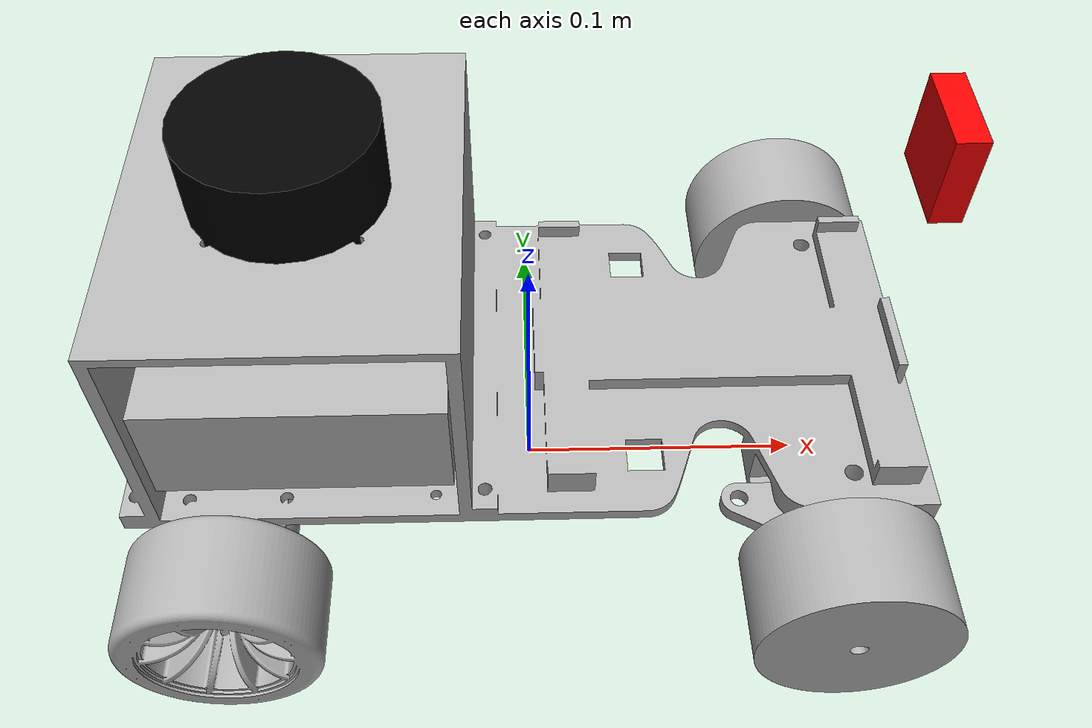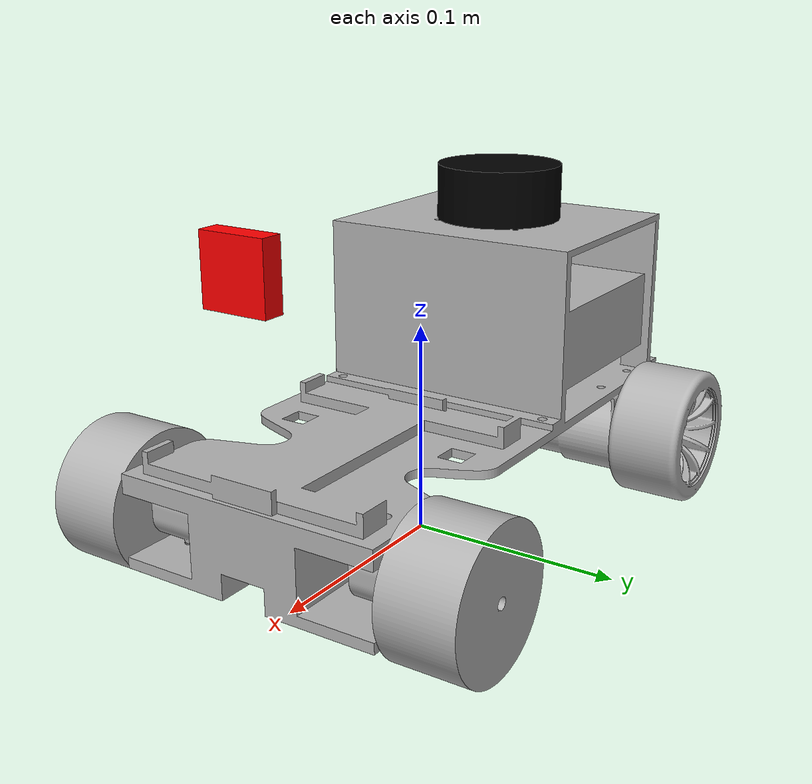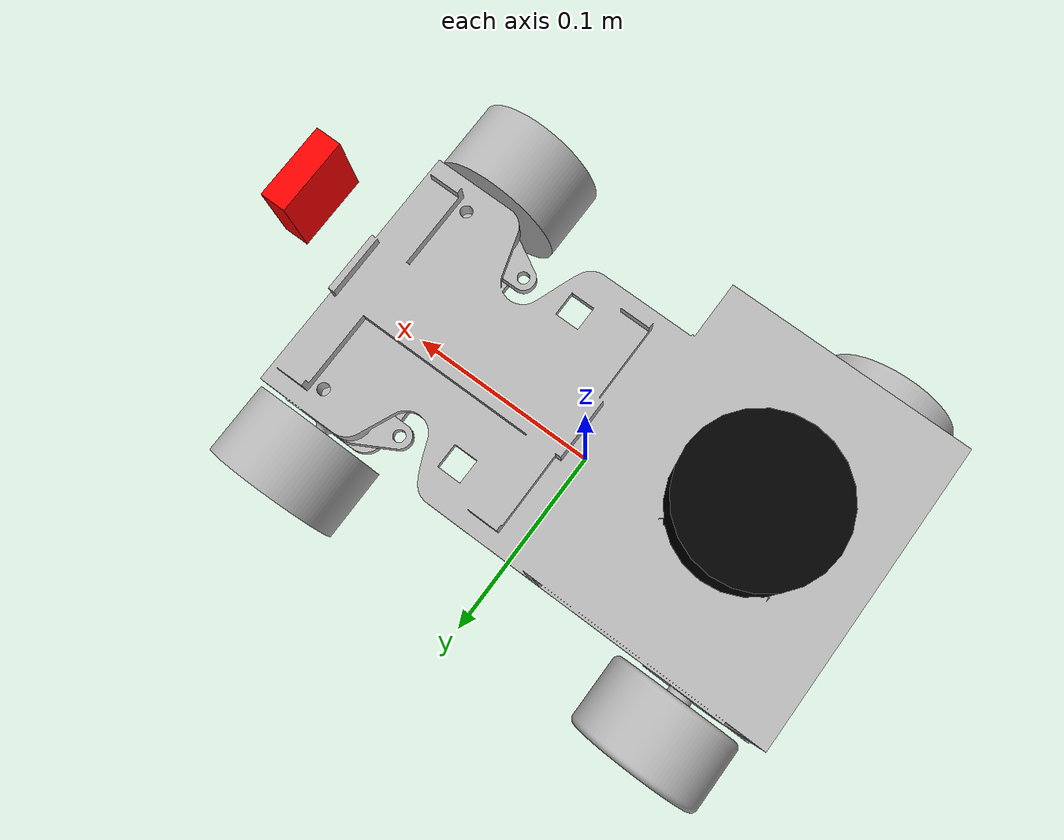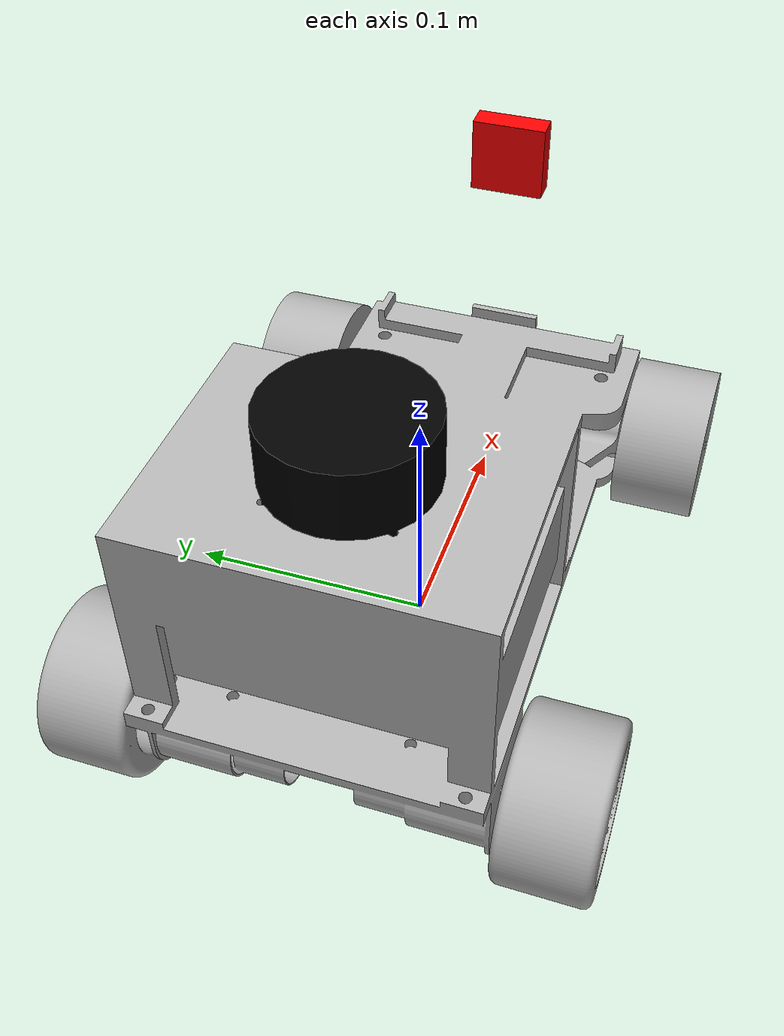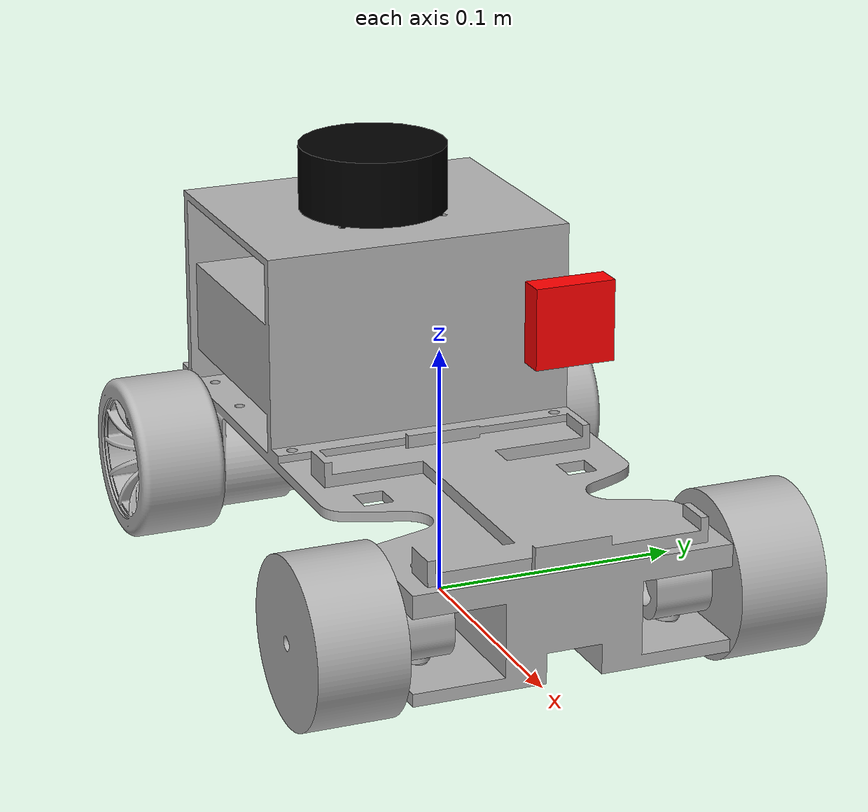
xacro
<?xml version="1.0" ?>
<robot name="robot_2" xmlns:xacro="http://www.ros.org/wiki/xacro">

<xacro:include filename="$(find robot_2_description)/urdf/materials.xacro" />
<xacro:include filename="$(find robot_2_description)/urdf/robot_2.trans" />
<xacro:include filename="$(find robot_2_description)/urdf/robot_2.gazebo" />
<xacro:include filename="$(find robot_2_description)/urdf/ros2_control.xacro" />
<xacro:include filename="$(find robot_2_description)/urdf/lidar.xacro" />
<xacro:include filename="$(find robot_2_description)/urdf/camera.xacro" />

<link name="base_link">
  <inertial>
    <origin xyz="-0.030778695710215853 -0.00017187958403205029 0.0780034263273014" rpy="0 0 0"/>
    <mass value="6.148868144226647"/>
    <inertia ixx="0.012471" iyy="0.038142" izz="0.040818" ixy="-6.8e-05" iyz="-2e-05" ixz="0.007561"/>
  </inertial>
  <visual>
    <origin xyz="0 0 0" rpy="0 0 3.141592653589793"/>
    <geometry>
      <mesh filename="file://$(find robot_2_description)/meshes/base_link.stl" scale="0.001 0.001 0.001"/>
    </geometry>
    <material name="silver"/>
  </visual>
  <collision>
    <origin xyz="0 0 0" rpy="0 0 3.141592653589793"/>
    <geometry>
      <mesh filename="file://$(find robot_2_description)/meshes/base_link.stl" scale="0.001 0.001 0.001"/>
    </geometry>
  </collision>
</link>

<link name="right_steering_1">
  <inertial>
    <origin xyz="0.006158363315530671 0.0020544276496725286 -3.3069679672426133e-06" rpy="0 0 0"/>
    <mass value="0.09920122832738423"/>
    <inertia ixx="9e-06" iyy="1.4e-05" izz="1.5e-05" ixy="1e-06" iyz="0.0" ixz="-0.0"/>
  </inertial>
  <visual>
    <origin xyz="-0.10312 0.0505 -0.0351" rpy="0 0 3.141592653589793"/>
    <geometry>
      <mesh filename="file://$(find robot_2_description)/meshes/right_steering_1.stl" scale="0.001 0.001 0.001"/>
    </geometry>
    <material name="silver"/>
  </visual>
  <collision>
    <origin xyz="-0.10312 0.0505 -0.0351" rpy="0 0 3.141592653589793"/>
    <geometry>
      <mesh filename="file://$(find robot_2_description)/meshes/right_steering_1.stl" scale="0.001 0.001 0.001"/>
    </geometry>
  </collision>
</link>

<link name="left_steering_1">
  <inertial>
    <origin xyz="0.006158363315530768 -0.0020544276496724106 3.3452641401351957e-06" rpy="0 0 0"/>
    <mass value="0.09920122832738423"/>
    <inertia ixx="9e-06" iyy="1.4e-05" izz="1.5e-05" ixy="-1e-06" iyz="0.0" ixz="0.0"/>
  </inertial>
  <visual>
    <origin xyz="-0.10312 -0.0505 -0.0351" rpy="0 0 3.141592653589793"/>
    <geometry>
      <mesh filename="file://$(find robot_2_description)/meshes/left_steering_1.stl" scale="0.001 0.001 0.001"/>
    </geometry>
    <material name="silver"/>
  </visual>
  <collision>
    <origin xyz="-0.10312 -0.0505 -0.0351" rpy="0 0 3.141592653589793"/>
    <geometry>
      <mesh filename="file://$(find robot_2_description)/meshes/left_steering_1.stl" scale="0.001 0.001 0.001"/>
    </geometry>
  </collision>
</link>

<link name="left_rear_wheel_1">
  <inertial>
    <origin xyz="-9.911240016202694e-08 -0.00032956138667881996 2.034739292333665e-08" rpy="0 0 0"/>
    <mass value="0.4967432663929975"/>
    <inertia ixx="0.000229" iyy="0.000365" izz="0.000229" ixy="0.0" iyz="-0.0" ixz="0.0"/>
  </inertial>
  <visual>
    <origin xyz="0.097623 -0.083 -0.0351" rpy="0 0 3.141592653589793"/>
    <geometry>
      <mesh filename="file://$(find robot_2_description)/meshes/left_rear_wheel_1.stl" scale="0.001 0.001 0.001"/>
    </geometry>
    <material name="silver"/>
  </visual>
  <collision>
    <origin xyz="0.097623 -0.083 -0.0351" rpy="0 0 3.141592653589793"/>
    <geometry>
      <mesh filename="file://$(find robot_2_description)/meshes/left_rear_wheel_1.stl" scale="0.001 0.001 0.001"/>
    </geometry>
  </collision>
</link>

<link name="right_rear_wheel_1">
  <inertial>
    <origin xyz="1.9532710547609522e-07 0.0003295613866789171 2.0491547063350435e-08" rpy="0 0 0"/>
    <mass value="0.49674326639299754"/>
    <inertia ixx="0.000229" iyy="0.000365" izz="0.000229" ixy="-0.0" iyz="0.0" ixz="-0.0"/>
  </inertial>
  <visual>
    <origin xyz="0.098035 0.083 -0.0351" rpy="0 0 3.141592653589793"/>
    <geometry>
      <mesh filename="file://$(find robot_2_description)/meshes/right_rear_wheel_1.stl" scale="0.001 0.001 0.001"/>
    </geometry>
    <material name="silver"/>
  </visual>
  <collision>
    <origin xyz="0.098035 0.083 -0.0351" rpy="0 0 3.141592653589793"/>
    <geometry>
      <mesh filename="file://$(find robot_2_description)/meshes/right_rear_wheel_1.stl" scale="0.001 0.001 0.001"/>
    </geometry>
  </collision>
</link>

<link name="right_front_wheel_1">
  <inertial>
    <origin xyz="0 0 0" rpy="0 0 0"/>
    <mass value="0.9046643177648892"/>
    <inertia ixx="0.000333" iyy="0.000481" izz="0.000333" ixy="0.0" iyz="0.0" ixz="0.0"/>
  </inertial>
  <visual>
    <origin xyz="-0.10005 0.082822 -0.0351" rpy="0 0 3.141592653589793"/>
    <geometry>
      <mesh filename="file://$(find robot_2_description)/meshes/right_front_wheel_1.stl" scale="0.001 0.001 0.001"/>
    </geometry>
    <material name="silver"/>
  </visual>
  <collision>
    <origin xyz="-0.10005 0.082822 -0.0351" rpy="0 0 3.141592653589793"/>
    <geometry>
      <mesh filename="file://$(find robot_2_description)/meshes/right_front_wheel_1.stl" scale="0.001 0.001 0.001"/>
    </geometry>
  </collision>
</link>

<link name="left_front_wheel_1">
  <inertial>
    <origin xyz="0 0 0" rpy="0 0 0"/>
    <mass value="0.9046643177648891"/>
    <inertia ixx="0.000333" iyy="0.000481" izz="0.000333" ixy="0.0" iyz="0.0" ixz="0.0"/>
  </inertial>
  <visual>
    <origin xyz="-0.10005 -0.082822 -0.0351" rpy="0 0 3.141592653589793"/>
    <geometry>
      <mesh filename="file://$(find robot_2_description)/meshes/left_front_wheel_1.stl" scale="0.001 0.001 0.001"/>
    </geometry>
    <material name="silver"/>
  </visual>
  <collision>
    <origin xyz="-0.10005 -0.082822 -0.0351" rpy="0 0 3.141592653589793"/>
    <geometry>
      <mesh filename="file://$(find robot_2_description)/meshes/left_front_wheel_1.stl" scale="0.001 0.001 0.001"/>
    </geometry>
  </collision>
</link>

<joint name="right_steering_to_base_link" type="revolute">
  <origin xyz="0.10312 -0.0505 0.0351" rpy="0 0 0"/>
  <parent link="base_link"/>
  <child link="right_steering_1"/>
  <axis xyz="0.0 0.0 1.0"/>
  <limit lower="-1.25" upper="1.25" effort="200.0" velocity="10.0"/>
</joint>

<joint name="left_steering_to_base_link" type="revolute">
  <origin xyz="0.10312 0.0505 0.0351" rpy="0 0 0"/>
  <parent link="base_link"/>
  <child link="left_steering_1"/>
  <axis xyz="0.0 0.0 1.0"/>
  <limit lower="-1.25" upper="1.25" effort="200.0" velocity="10.0"/>
</joint>

<joint name="left_rear_wheel_to_base_link" type="continuous">
  <origin xyz="-0.097623 0.083 0.0351" rpy="0 0 0"/>
  <parent link="base_link"/>
  <child link="left_rear_wheel_1"/>
  <axis xyz="0.0 1.0 0.0"/> </joint>

<joint name="right_rear_wheel_to_base_link" type="continuous">
  <origin xyz="-0.098035 -0.083 0.0351" rpy="0 0 0"/>
  <parent link="base_link"/>
  <child link="right_rear_wheel_1"/>
  <axis xyz="0.0 1.0 0.0"/>
</joint>

<joint name="right_front_wheel_to_right_steering" type="continuous">
  <origin xyz="-0.00307 -0.032322 0.0" rpy="0 0 0"/>
  <parent link="right_steering_1"/>
  <child link="right_front_wheel_1"/>
  <axis xyz="0.0 1.0 0.0"/>
</joint>

<joint name="left_front_wheel_to_left_steering" type="continuous">
  <origin xyz="-0.00307 0.032322 0.0" rpy="0 0 0"/>
  <parent link="left_steering_1"/>
  <child link="left_front_wheel_1"/>
  <axis xyz="0.0 1.0 0.0"/>
</joint>

</robot>

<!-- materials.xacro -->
<robot name="robot_2" xmlns:xacro="http://www.ros.org/wiki/xacro" >

<material name="silver">
  <color rgba="0.700 0.700 0.700 1.000"/>
</material>

</robot>

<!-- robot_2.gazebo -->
<robot name="robot_2" xmlns:xacro="http://www.ros.org/wiki/xacro" >

<xacro:property name="body_color" value="Gazebo/Silver" />

<gazebo reference="base_link">
  <material>${body_color}</material>
  <mu1>0.1</mu1>
  <mu2>0.1</mu2>
  <self_collide>false</self_collide>
  <gravity>true</gravity>
</gazebo>

<gazebo reference="right_steering_1">
  <material>${body_color}</material>
  <mu1>0.1</mu1>
  <mu2>0.1</mu2>
  <self_collide>false</self_collide>
</gazebo>

<gazebo reference="left_steering_1">
  <material>${body_color}</material>
  <mu1>0.1</mu1>
  <mu2>0.1</mu2>
  <self_collide>false</self_collide>
</gazebo>

<gazebo reference="left_rear_wheel_1">
  <material>${body_color}</material>
  <mu1>1.5</mu1>
  <mu2>1.5</mu2>
  <kp>1000000.0</kp>
  <kd>100.0</kd>
  <self_collide>false</self_collide>
</gazebo>

<gazebo reference="right_rear_wheel_1">
  <material>${body_color}</material>
  <mu1>1.5</mu1>
  <mu2>1.5</mu2>
  <kp>1000000.0</kp>
  <kd>100.0</kd>
  <self_collide>false</self_collide>
</gazebo>

<gazebo reference="right_front_wheel_1">
  <material>${body_color}</material>
  <mu1>1.5</mu1>
  <mu2>1.5</mu2>
  <kp>1000000.0</kp>
  <kd>100.0</kd>
  <self_collide>false</self_collide>
</gazebo>

<gazebo reference="left_front_wheel_1">
  <material>${body_color}</material>
  <mu1>1.5</mu1>
  <mu2>1.5</mu2>
  <kp>1000000.0</kp>
  <kd>100.0</kd>
  <self_collide>false</self_collide>
</gazebo>

</robot>

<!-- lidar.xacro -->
<robot xmlns:xacro="http://www.ros.org/wiki/xacro">

  <joint name="laser_joint" type="fixed">
    <parent link="base_link"/>
    <child link="laser_frame"/>
    <origin xyz="-0.07 0.0 0.15" rpy="0 0 0"/> </joint>

  <link name="laser_frame">
    <visual>
      <geometry>
        <cylinder radius="0.03" length="0.03"/>
      </geometry>
      <material name="black">
        <color rgba="0.0 0.0 0.0 1.0"/>
      </material>
    </visual>
    <inertial>
      <origin xyz="0 0 0" rpy="0 0 0"/>
      <mass value="0.1"/>
      <inertia ixx="7.9e-5" ixy="0.0" ixz="0.0" iyy="7.9e-5" iyz="0.0" izz="1.25e-4"/>
    </inertial>
  </link>

  <gazebo reference="laser_frame">
    <material>Gazebo/Black</material>
    <sensor name="laser" type="ray">
      <pose>0 0 0 0 0 0</pose>
      <visualize>false</visualize> <update_rate>10</update_rate> <ray>
        <scan>
          <horizontal>
            <samples>360</samples>
            <resolution>1</resolution>
            <min_angle>-3.141592</min_angle> <max_angle>3.141592</max_angle>
          </horizontal>
        </scan>
        <range>
          <min>0.3</min>
          <max>12.0</max>
          <resolution>0.01</resolution>
        </range>
      </ray>
      <plugin name="laser_controller" filename="libgazebo_ros_ray_sensor.so">
        <ros>
          <argument>~/out:=scan</argument> </ros>
        <output_type>sensor_msgs/LaserScan</output_type>
        <frame_name>laser_frame</frame_name>
      </plugin>
    </sensor>
  </gazebo>

</robot>

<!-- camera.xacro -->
<robot xmlns:xacro="http://www.ros.org/wiki/xacro">

  <joint name="camera_joint" type="fixed">
    <parent link="base_link"/>
    <child link="camera_link"/>
    <origin xyz="0.12 0.0 0.15" rpy="0 0.0 0"/> </joint>

  <link name="camera_link">
    <visual>
      <geometry>
        <box size="0.01 0.03 0.03"/>
      </geometry>
      <material name="red">
        <color rgba="1.0 0.0 0.0 1.0"/>
      </material>
    </visual>
    <inertial>
      <origin xyz="0 0 0" rpy="0 0 0"/>
      <mass value="0.05"/>
      <inertia ixx="1.4e-5" ixy="0.0" ixz="0.0" iyy="4.1e-6" iyz="0.0" izz="1.4e-5"/>
    </inertial>
  </link>

  <joint name="camera_optical_joint" type="fixed">
    <parent link="camera_link"/>
    <child link="camera_link_optical"/>
    <origin xyz="0 0 0" rpy="-1.5707 0 -1.5707"/>
  </joint>
  <link name="camera_link_optical"></link>

  <gazebo reference="camera_link">
    <material>Gazebo/Red</material>
    <sensor name="camera" type="camera">
      <pose>0 0 0 0 0 0</pose>
      <visualize>true</visualize>
      <update_rate>30</update_rate> <camera name="head">
        <horizontal_fov>1.3962634</horizontal_fov> <image>
          <width>640</width>
          <height>480</height>
          <format>R8G8B8</format>
        </image>
        <clip>
          <min>0.1</min>
          <max>100.0</max>
        </clip>
      </camera>
      <plugin name="camera_controller" filename="libgazebo_ros_camera.so">
        <frame_name>camera_link_optical</frame_name> </plugin>
    </sensor>
  </gazebo>

</robot>
